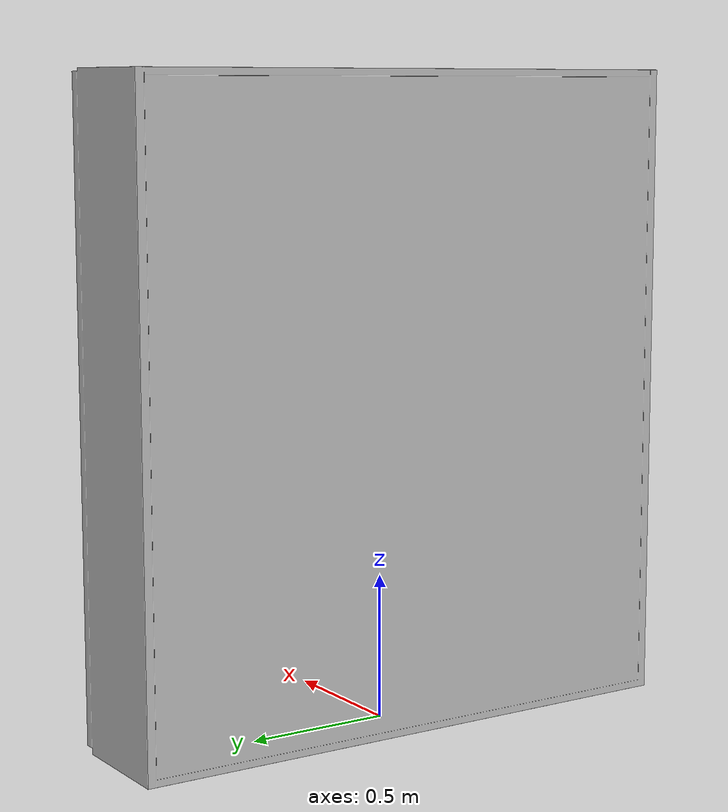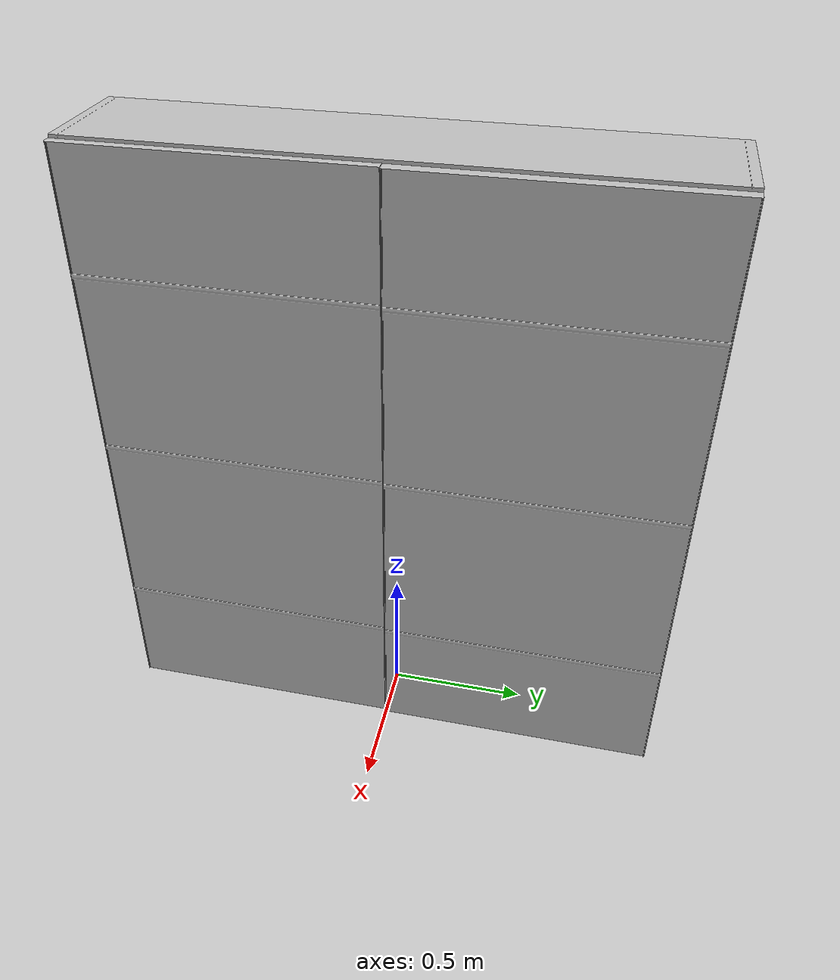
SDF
<?xml version='1.0'?>
<sdf version='1.4'>
  <model name='121'>
    <pose>0 0 0 0 0 0</pose>
    <static>true</static>
    <link name='link'>
      <collision name='collision'>
        <pose>0 0 0 0 0 0</pose>
        <geometry>
          <box>
            <size>0.440027 2.01 2</size>
          </box>
        </geometry>
      </collision>
      <visual name='visual'>
        <pose>0 0 0 0 0 0</pose>
        <geometry>
          <mesh><uri>model://121/121.dae</uri></mesh>
        </geometry>
      </visual>
    </link>
  </model>
</sdf>
